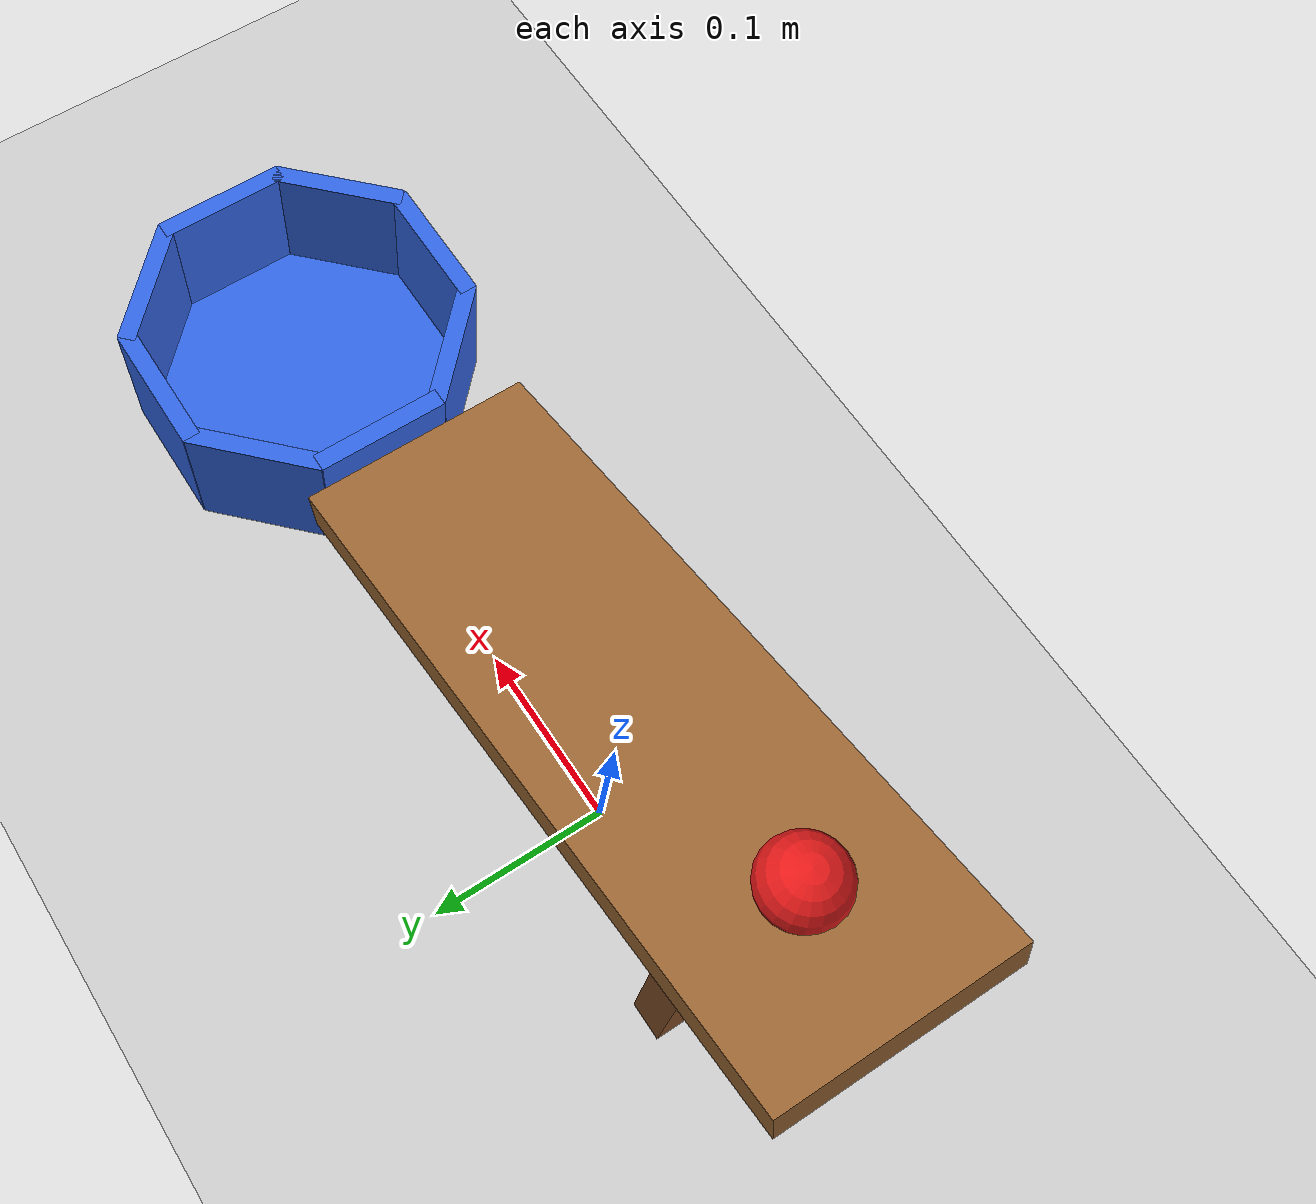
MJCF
<mujoco model="ball_ramp_cup">
  <option timestep="0.002"/>
  <worldbody>
    <light name="sun" pos="0 0 2" dir="0 0 -1"/>
    <geom name="floor" type="plane" size="2 2 0.1" rgba="0.8 0.8 0.8 1"/>

    <geom name="ramp" type="box" size="0.18 0.06 0.01" pos="0 0 0.1669" euler="0 15 0" rgba="0.6 0.4 0.2 1"/>
    <geom name="ramp_leg" type="box" size="0.01 0.04 0.0915" pos="-0.10 0 0.0915" rgba="0.5 0.3 0.15 1"/>

    <body name="ball" pos="-0.1081 0 0.2269">
      <freejoint name="ball_free"/>
      <geom name="ball" type="sphere" size="0.02" rgba="0.9 0.1 0.1 1"/>
    </body>

    <body name="cup" pos="0.30 0 0">
      <geom name="cup_bottom" type="cylinder" size="0.09 0.005" pos="0 0 0.005" condim="6" friction="1 0.005 0.005" rgba="0.2 0.4 0.9 1"/>
      <geom name="cup_wall0" type="box" size="0.005 0.037 0.04" pos="0.085 0 0.04" euler="0 0 0" condim="6" friction="1 0.005 0.005" rgba="0.2 0.4 0.9 1"/>
      <geom name="cup_wall1" type="box" size="0.005 0.037 0.04" pos="0.0601 0.0601 0.04" euler="0 0 45" condim="6" friction="1 0.005 0.005" rgba="0.2 0.4 0.9 1"/>
      <geom name="cup_wall2" type="box" size="0.005 0.037 0.04" pos="0 0.085 0.04" euler="0 0 90" condim="6" friction="1 0.005 0.005" rgba="0.2 0.4 0.9 1"/>
      <geom name="cup_wall3" type="box" size="0.005 0.037 0.04" pos="-0.0601 0.0601 0.04" euler="0 0 135" condim="6" friction="1 0.005 0.005" rgba="0.2 0.4 0.9 1"/>
      <geom name="cup_wall4" type="box" size="0.005 0.037 0.04" pos="-0.085 0 0.04" euler="0 0 180" condim="6" friction="1 0.005 0.005" rgba="0.2 0.4 0.9 1"/>
      <geom name="cup_wall5" type="box" size="0.005 0.037 0.04" pos="-0.0601 -0.0601 0.04" euler="0 0 225" condim="6" friction="1 0.005 0.005" rgba="0.2 0.4 0.9 1"/>
      <geom name="cup_wall6" type="box" size="0.005 0.037 0.04" pos="0 -0.085 0.04" euler="0 0 270" condim="6" friction="1 0.005 0.005" rgba="0.2 0.4 0.9 1"/>
      <geom name="cup_wall7" type="box" size="0.005 0.037 0.04" pos="0.0601 -0.0601 0.04" euler="0 0 315" condim="6" friction="1 0.005 0.005" rgba="0.2 0.4 0.9 1"/>
    </body>
  </worldbody>
</mujoco>
